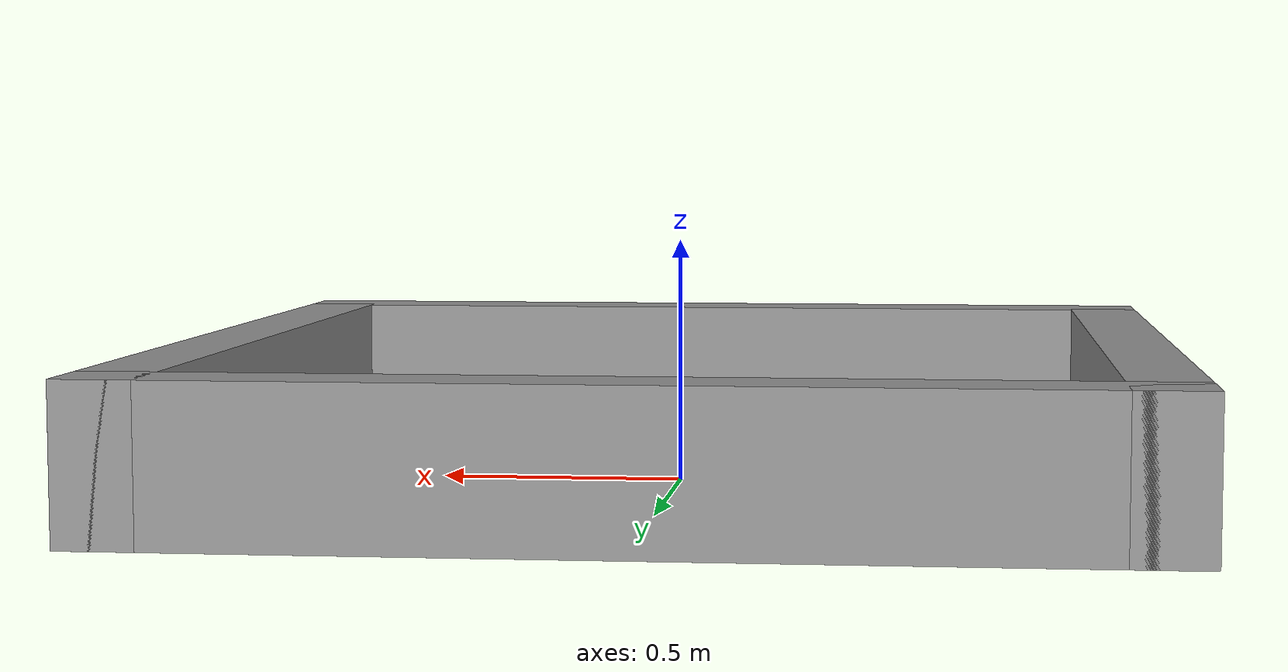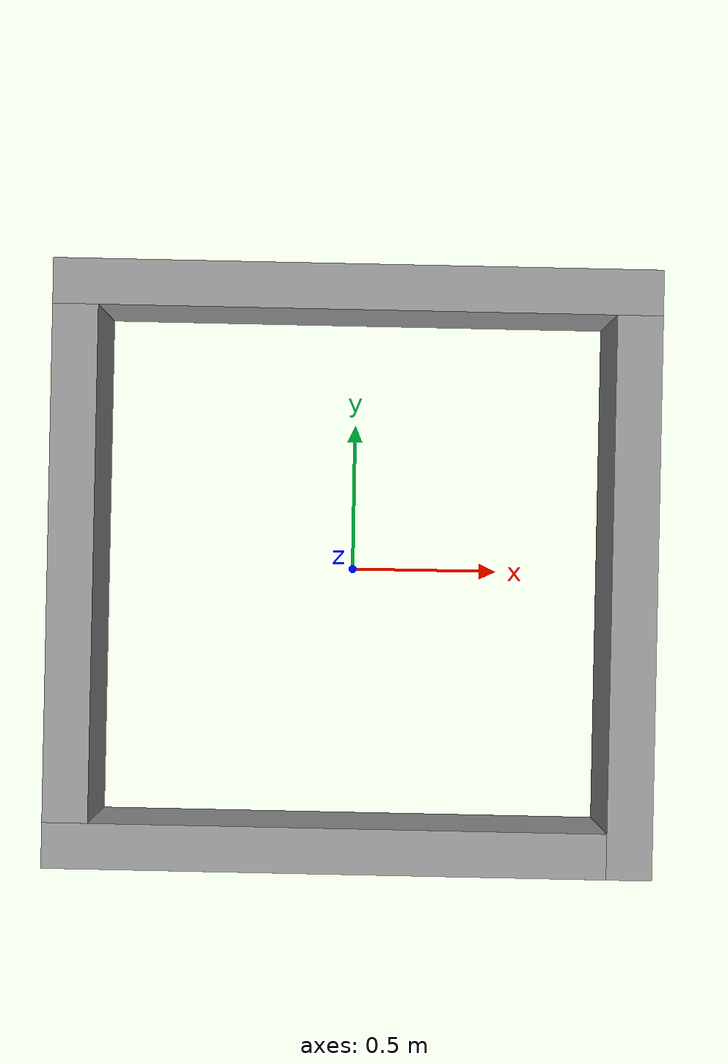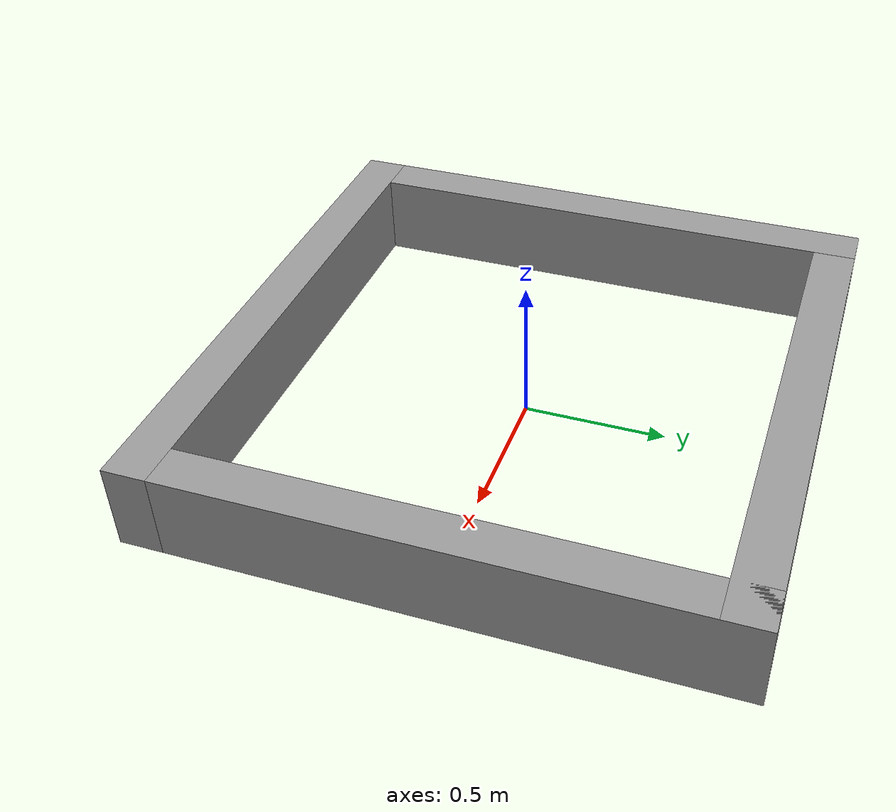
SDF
<?xml version='1.0'?>
<sdf version='1.6'>
  <model name='robot_env_2x2'>
    <pose frame=''>0 0 0 0 0 0</pose>
    <link name='Wall_16'>
      <collision name='Wall_16_Collision'>
        <geometry>
          <box>
            <size>2 0.15 0.3</size>
          </box>
        </geometry>
        <pose frame=''>0 0 0.15 0 -0 0</pose>
      </collision>
      <visual name='Wall_16_Visual'>
        <pose frame=''>0 0 0.15 0 -0 0</pose>
        <geometry>
          <box>
            <size>2 0.15 0.3</size>
          </box>
        </geometry>
        <material>
          <script>
            <uri>file://media/materials/scripts/gazebo.material</uri>
            <name>Gazebo/Grey</name>
          </script>
          <ambient>1 1 1 1</ambient>
        </material>
        <meta>
          <layer>0</layer>
        </meta>
      </visual>
      <pose frame=''>0 0.925 0 0 -0 0</pose>
    </link>
    <link name='Wall_17'>
      <collision name='Wall_17_Collision'>
        <geometry>
          <box>
            <size>2 0.15 0.3</size>
          </box>
        </geometry>
        <pose frame=''>0 0 0.15 0 -0 0</pose>
      </collision>
      <visual name='Wall_17_Visual'>
        <pose frame=''>0 0 0.15 0 -0 0</pose>
        <geometry>
          <box>
            <size>2 0.15 0.3</size>
          </box>
        </geometry>
        <material>
          <script>
            <uri>file://media/materials/scripts/gazebo.material</uri>
            <name>Gazebo/Grey</name>
          </script>
          <ambient>1 1 1 1</ambient>
        </material>
        <meta>
          <layer>0</layer>
        </meta>
      </visual>
      <pose frame=''>0.925 0 0 0 -0 -1.5708</pose>
    </link>
    <link name='Wall_18'>
      <collision name='Wall_18_Collision'>
        <geometry>
          <box>
            <size>2 0.15 0.3</size>
          </box>
        </geometry>
        <pose frame=''>0 0 0.15 0 -0 0</pose>
      </collision>
      <visual name='Wall_18_Visual'>
        <pose frame=''>0 0 0.15 0 -0 0</pose>
        <geometry>
          <box>
            <size>2 0.15 0.3</size>
          </box>
        </geometry>
        <material>
          <script>
            <uri>file://media/materials/scripts/gazebo.material</uri>
            <name>Gazebo/Grey</name>
          </script>
          <ambient>1 1 1 1</ambient>
        </material>
        <meta>
          <layer>0</layer>
        </meta>
      </visual>
      <pose frame=''>0 -0.925 0 0 -0 3.14159</pose>
    </link>
    <link name='Wall_19'>
      <collision name='Wall_19_Collision'>
        <geometry>
          <box>
            <size>2 0.15 0.3</size>
          </box>
        </geometry>
        <pose frame=''>0 0 0.15 0 -0 0</pose>
      </collision>
      <visual name='Wall_19_Visual'>
        <pose frame=''>0 0 0.15 0 -0 0</pose>
        <geometry>
          <box>
            <size>2 0.15 0.3</size>
          </box>
        </geometry>
        <material>
          <script>
            <uri>file://media/materials/scripts/gazebo.material</uri>
            <name>Gazebo/Grey</name>
          </script>
          <ambient>1 1 1 1</ambient>
        </material>
        <meta>
          <layer>0</layer>
        </meta>
      </visual>
      <pose frame=''>-0.925 0 0 0 -0 1.5708</pose>
    </link>
    <static>1</static>
  </model>
</sdf>
